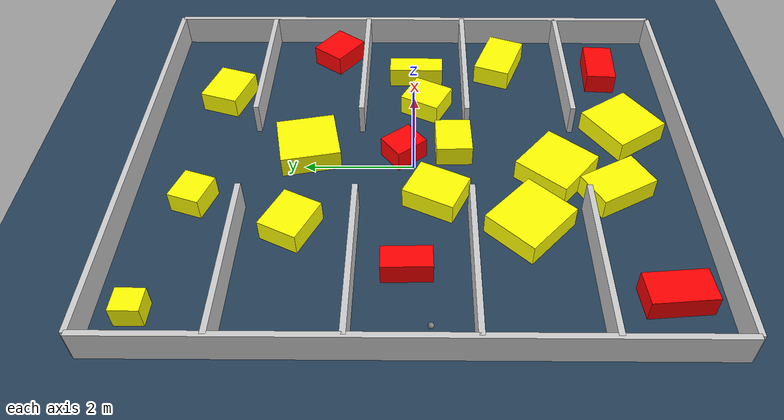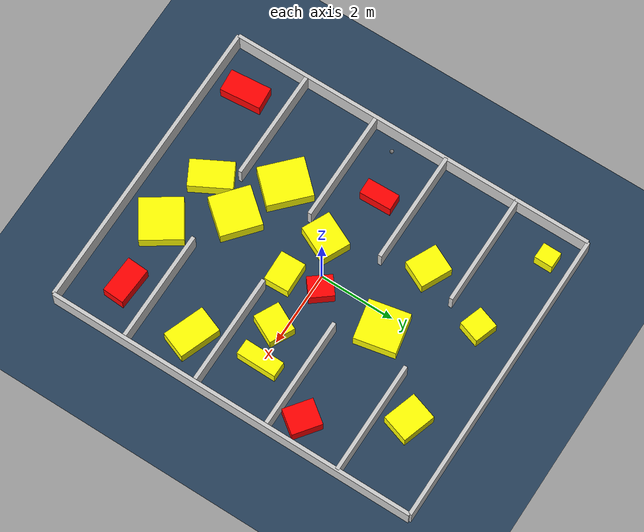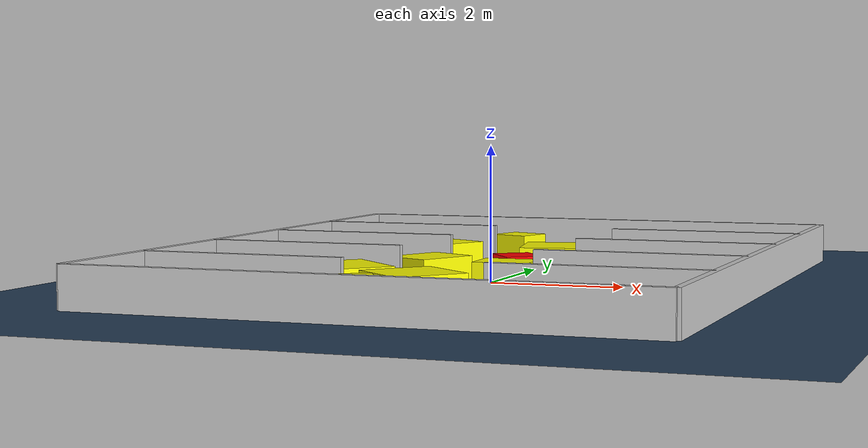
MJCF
<?xml version="1.0" ?>
<mujoco model="generated_environment">
  <option timestep="0.01" integrator="RK4" cone="elliptic"/>
  <default>
    <geom density="1"/>
  </default>
  <asset>
    <texture builtin="gradient" height="3072" rgb1="0.3 0.5 0.7" rgb2="0 0 0" type="skybox" width="512"/>
    <texture builtin="checker" height="300" mark="edge" markrgb="0.8 0.8 0.8" name="groundplane" rgb1="0.2 0.3 0.4" rgb2="0.1 0.2 0.3" type="2d" width="300"/>
    <material name="groundplane" reflectance="0.2" texrepeat="5 5" texture="groundplane" texuniform="true"/>
    <material name="robot" rgba="0.0 1.0 0.0 1"/>
  </asset>
  <worldbody>
    <light dir="0 0 -1" directional="true" pos="0 0 1.5"/>
    <geom condim="4" friction="1.0 0.005 0.001" material="groundplane" name="floor" size="0 0 0.05" type="plane"/>
    <body name="walls">
      <geom name="wall_1" condim="4" pos="-4.0 0.0 0.3" rgba="0.800000011920929 0.800000011920929 0.800000011920929 1.0" size="0.05 5.0 0.3" type="box"/>
      <geom name="wall_2" condim="4" pos="4.0 0.0 0.3" rgba="0.800000011920929 0.800000011920929 0.800000011920929 1.0" size="0.05 5.0 0.3" type="box"/>
      <geom name="wall_3" condim="4" pos="0.0 -5.0 0.3" rgba="0.800000011920929 0.800000011920929 0.800000011920929 1.0" size="4.0 0.05 0.3" type="box"/>
      <geom name="wall_4" condim="4" pos="0.0 5.0 0.3" rgba="0.800000011920929 0.800000011920929 0.800000011920929 1.0" size="4.0 0.05 0.3" type="box"/>
      <geom name="wall_5" condim="4" pos="-2.5 -3.0 0.3" rgba="0.800000011920929 0.800000011920929 0.800000011920929 1.0" size="1.5 0.05 0.3" type="box"/>
      <geom name="wall_6" condim="4" pos="2.5 -3.0 0.3" rgba="0.800000011920929 0.800000011920929 0.800000011920929 1.0" size="1.5 0.05 0.3" type="box"/>
      <geom name="wall_7" condim="4" pos="-2.5 -1.0 0.3" rgba="0.800000011920929 0.800000011920929 0.800000011920929 1.0" size="1.5 0.05 0.3" type="box"/>
      <geom name="wall_8" condim="4" pos="2.5 -1.0 0.3" rgba="0.800000011920929 0.800000011920929 0.800000011920929 1.0" size="1.5 0.05 0.3" type="box"/>
      <geom name="wall_9" condim="4" pos="-2.5 1.0 0.3" rgba="0.800000011920929 0.800000011920929 0.800000011920929 1.0" size="1.5 0.05 0.3" type="box"/>
      <geom name="wall_10" condim="4" pos="2.5 1.0 0.3" rgba="0.800000011920929 0.800000011920929 0.800000011920929 1.0" size="1.5 0.05 0.3" type="box"/>
      <geom name="wall_11" condim="4" pos="-2.5 3.0 0.3" rgba="0.800000011920929 0.800000011920929 0.800000011920929 1.0" size="1.5 0.05 0.3" type="box"/>
      <geom name="wall_12" condim="4" pos="2.5 3.0 0.3" rgba="0.800000011920929 0.800000011920929 0.800000011920929 1.0" size="1.5 0.05 0.3" type="box"/>
    </body>
    <body name="robot">
      <joint name="joint_x" type="slide" pos="0 0 0" axis="1 0 0"/>
      <joint name="joint_y" type="slide" pos="0 0 0" axis="0 1 0"/>
      <geom name="robot" type="sphere" pos="-3.5732820709036166 -0.28070039920377 0.2" size="0.05" mass="5." friction="1.0 0.005 0.0001" condim="4"/>
      <site name="sensor_ball"/>
    </body>
    <body name="obstacle_1_static">
      <geom name="obstacle_1_static" condim="4" pos="0.3450596155912118 0.1915365584137101 0.2" euler="0 0 308.21627467068566" friction="1.0 0.005 0.001" rgba="1 0 0 1" size="0.3231858293088889 0.27540547926904424 0.2" type="box"/>
    </body>
    <body name="obstacle_2_static">
      <geom name="obstacle_2_static" condim="4" pos="-2.4083016538633233 0.10216367954769012 0.2" euler="0 0 91.46997149570635" friction="1.0 0.005 0.001" rgba="1 0 0 1" size="0.42933144479923635 0.2163872486477749 0.2" type="box"/>
    </body>
    <body name="obstacle_3_movable">
      <geom name="obstacle_3_movable" condim="4" pos="1.7114564152220444 -0.24066406084923653 0.2" euler="0 0 333.1338068773828" friction="1.0 0.005 0.001" rgba="1 1 0 1" size="0.34472871134893274 0.3892923187845465 0.2" type="box" mass="0.1"/>
      <joint type="free"/>
    </body>
    <body name="obstacle_4_static">
      <geom name="obstacle_4_static" condim="4" pos="3.310600218609036 1.593420820679495 0.2" euler="0 0 143.1082147087116" friction="1.0 0.005 0.001" rgba="1 0 0 1" size="0.39405927312407607 0.3438351966164689 0.2" type="box"/>
    </body>
    <body name="obstacle_5_movable">
      <geom name="obstacle_5_movable" condim="4" pos="-0.1634030979161185 -2.5814153959411374 0.2" euler="0 0 229.96303302675906" friction="1.0 0.005 0.001" rgba="1 1 0 1" size="0.5359900937651383 0.5432787963206613 0.2" type="box" mass="0.1"/>
      <joint type="free"/>
    </body>
    <body name="obstacle_6_movable">
      <geom name="obstacle_6_movable" condim="4" pos="-0.645100580048136 -3.5967347670053704 0.2" euler="0 0 118.36447590005082" friction="1.0 0.005 0.001" rgba="1 1 0 1" size="0.5649753115806331 0.3575592320781524 0.2" type="box" mass="0.1"/>
      <joint type="free"/>
    </body>
    <body name="obstacle_7_movable">
      <geom name="obstacle_7_movable" condim="4" pos="-0.8777311409448543 3.860149384310266 0.2" euler="0 0 341.39362771072086" friction="1.0 0.005 0.001" rgba="1 1 0 1" size="0.3158433402297486 0.29653393350889284 0.2" type="box" mass="0.1"/>
      <joint type="free"/>
    </body>
    <body name="obstacle_8_movable">
      <geom name="obstacle_8_movable" condim="4" pos="0.970000862259099 -3.9667976556521003 0.2" euler="0 0 213.85452182254122" friction="1.0 0.005 0.001" rgba="1 1 0 1" size="0.5544070153788128 0.5532093692373206 0.2" type="box" mass="0.1"/>
      <joint type="free"/>
    </body>
    <body name="obstacle_9_movable">
      <geom name="obstacle_9_movable" condim="4" pos="0.39808455568025947 1.9666741721342094 0.2" euler="0 0 191.4858427528057" friction="1.0 0.005 0.001" rgba="1 1 0 1" size="0.5332968783089029 0.5453171299570152 0.2" type="box" mass="0.1"/>
      <joint type="free"/>
    </body>
    <body name="obstacle_10_static">
      <geom name="obstacle_10_static" condim="4" pos="-2.9624385367805 -4.129384922446173 0.2" euler="0 0 94.91670190691315" friction="1.0 0.005 0.001" rgba="1 0 0 1" size="0.5442639332264116 0.2973884713502073 0.2" type="box"/>
    </body>
    <body name="obstacle_11_movable">
      <geom name="obstacle_11_movable" condim="4" pos="2.9689255485514567 -1.7514945712235264 0.2" euler="0 0 249.300433756808" friction="1.0 0.005 0.001" rgba="1 1 0 1" size="0.3580368391445431 0.5591578847951699 0.2" type="box" mass="0.1"/>
      <joint type="free"/>
    </body>
    <body name="obstacle_12_movable">
      <geom name="obstacle_12_movable" condim="4" pos="-0.801062671631398 -0.39871334982168616 0.2" euler="0 0 154.50114833147614" friction="1.0 0.005 0.001" rgba="1 1 0 1" size="0.3899109124551565 0.48097856480743795 0.2" type="box" mass="0.1"/>
      <joint type="free"/>
    </body>
    <body name="obstacle_13_static">
      <geom name="obstacle_13_static" condim="4" pos="2.7405878039358234 -3.8033239796784435 0.2" euler="0 0 266.8023630127258" friction="1.0 0.005 0.001" rgba="1 0 0 1" size="0.2842687423103351 0.49697428310794334 0.2" type="box"/>
    </body>
    <body name="obstacle_14_movable">
      <geom name="obstacle_14_movable" condim="4" pos="-1.4540945118137585 -1.9860664585775818 0.2" euler="0 0 46.68923278582701" friction="1.0 0.005 0.001" rgba="1 1 0 1" size="0.521797812079244 0.5968305462050847 0.2" type="box" mass="0.1"/>
      <joint type="free"/>
    </body>
    <body name="obstacle_15_movable">
      <geom name="obstacle_15_movable" condim="4" pos="1.9624570583219896 3.7090778135324145 0.2" euler="0 0 72.22386347692705" friction="1.0 0.005 0.001" rgba="1 1 0 1" size="0.37077619941056805 0.45133596731411607 0.2" type="box" mass="0.1"/>
      <joint type="free"/>
    </body>
    <body name="obstacle_16_movable">
      <geom name="obstacle_16_movable" condim="4" pos="0.49358029272390125 -0.7332795805073204 0.2" euler="0 0 1.6504453794433038" friction="1.0 0.005 0.001" rgba="1 1 0 1" size="0.40464887355148915 0.33254034676946154 0.2" type="box" mass="0.1"/>
      <joint type="free"/>
    </body>
    <body name="obstacle_17_movable">
      <geom name="obstacle_17_movable" condim="4" pos="-3.264910518724008 4.334802963391273 0.2" euler="0 0 89.31111036711988" friction="1.0 0.005 0.001" rgba="1 1 0 1" size="0.2446355550725175 0.21554378964279872 0.2" type="box" mass="0.1"/>
      <joint type="free"/>
    </body>
    <body name="obstacle_18_movable">
      <geom name="obstacle_18_movable" condim="4" pos="-1.4909664477137858 2.0808183964159355 0.2" euler="0 0 64.21459187120446" friction="1.0 0.005 0.001" rgba="1 1 0 1" size="0.3713678303686231 0.4284908012438845 0.2" type="box" mass="0.1"/>
      <joint type="free"/>
    </body>
    <body name="obstacle_19_movable">
      <geom name="obstacle_19_movable" condim="4" pos="2.6311696160663103 -0.03115032791084449 0.2" euler="0 0 269.46455684225725" friction="1.0 0.005 0.001" rgba="1 1 0 1" size="0.5319724538334741 0.20526731484863447 0.2" type="box" mass="0.1"/>
      <joint type="free"/>
    </body>
  </worldbody>
  <actuator>
    <motor name="actuator_x" joint="joint_x" gear="1" ctrlrange="-1 1"/>
    <motor name="actuator_y" joint="joint_y" gear="1" ctrlrange="-1 1"/>
  </actuator>
</mujoco>
